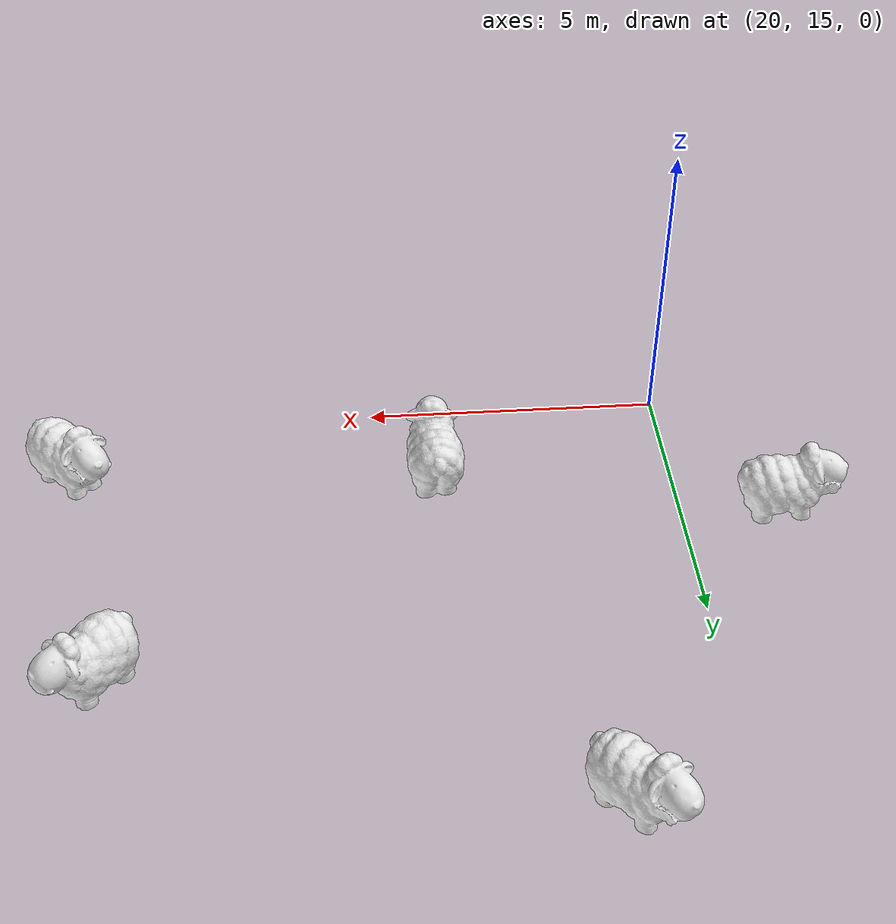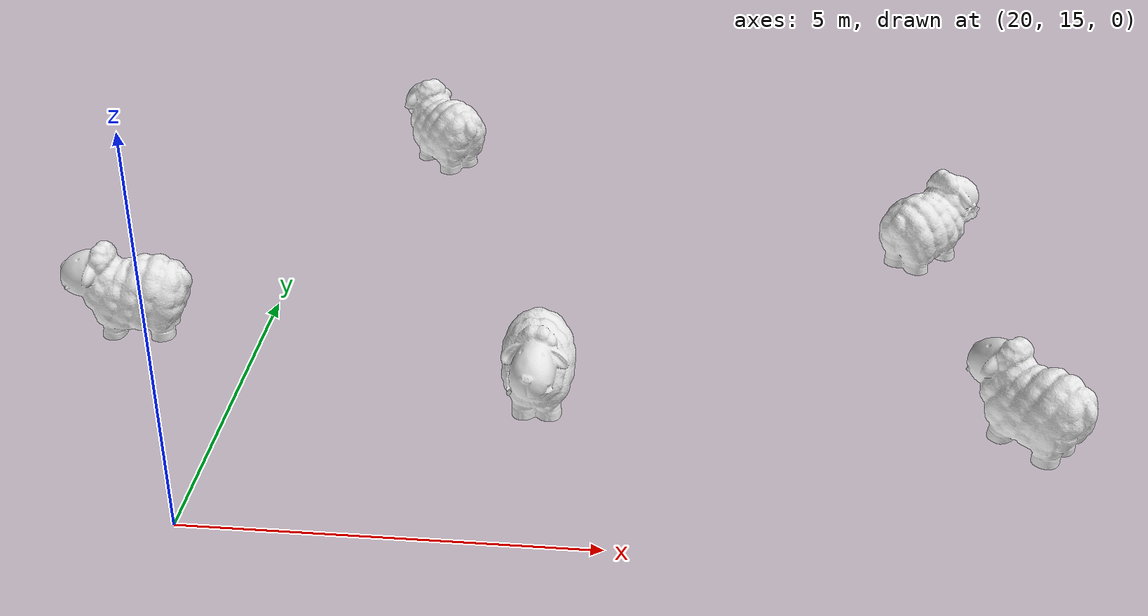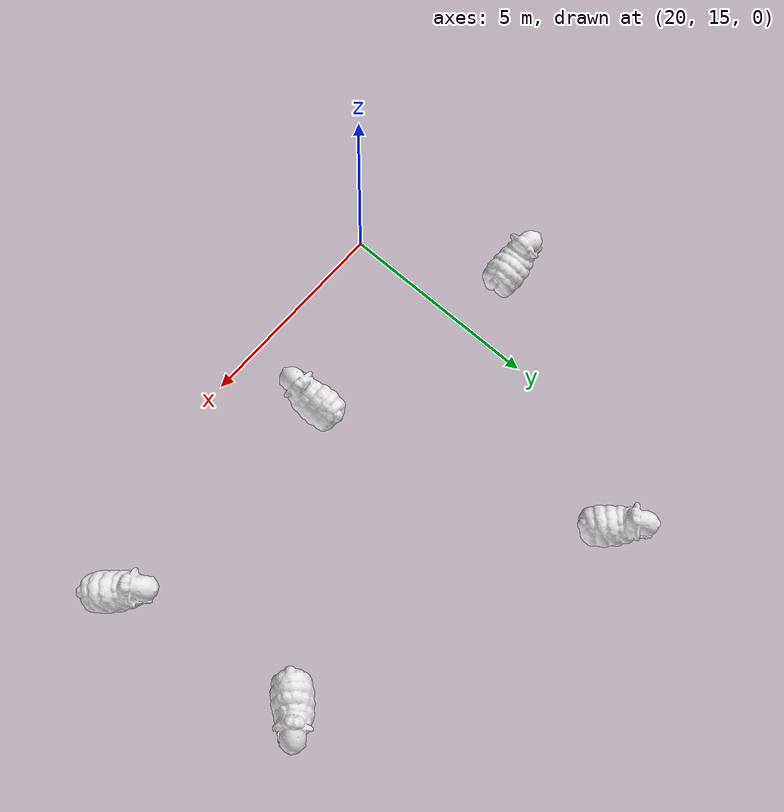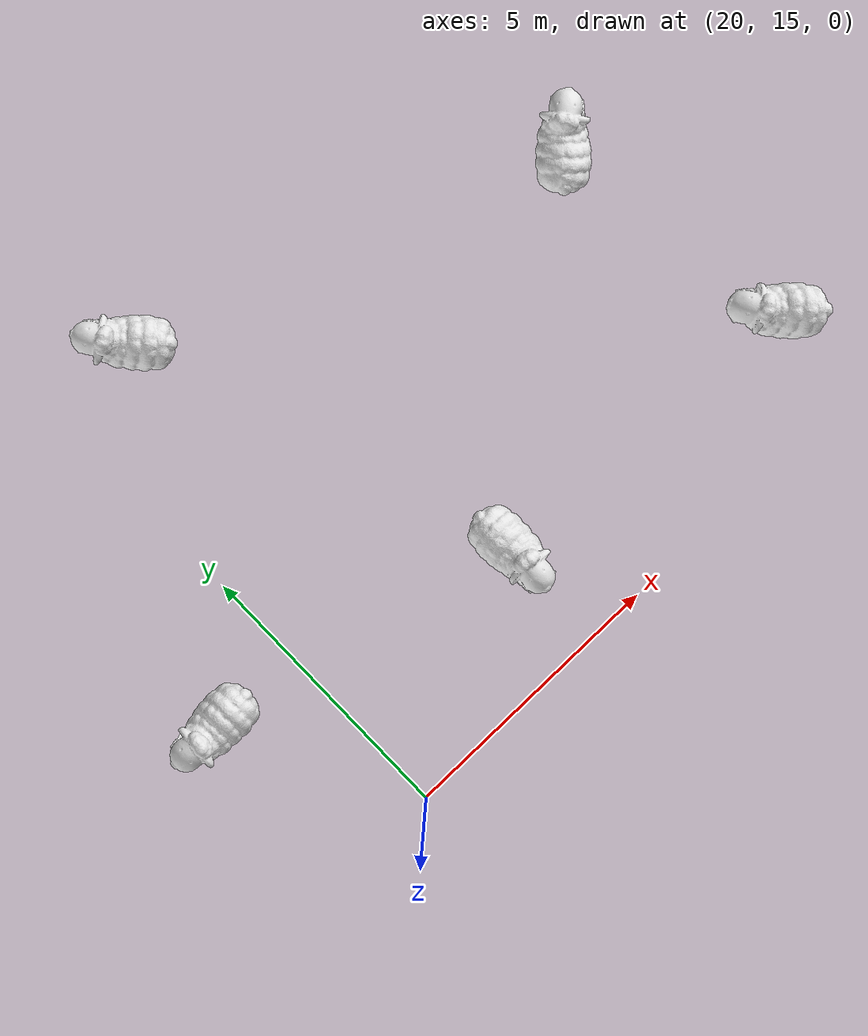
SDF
<sdf version="1.7">
 <world name="default">
  <light name="sun" type="directional">
   <pose>0 0 10 0 -0 0</pose>
   <diffuse>1 1 1 1</diffuse>
   <specular>0.2 0.2 0.2 1</specular>
   <attenuation>
    <range>1000</range>
    <constant>0.9</constant>
    <linear>0.01</linear>
    <quadratic>0.001</quadratic>
   </attenuation>
   <direction>-0.5 -0.5 -1</direction>
   <spot><inner_angle>0</inner_angle><outer_angle>0</outer_angle><falloff>0</falloff></spot>
  </light>
  <physics name="default_physics" default="0" type="ode">
   <max_step_size>0.001</max_step_size>
   <real_time_factor>1</real_time_factor>
   <real_time_update_rate>1000</real_time_update_rate>
  </physics>
  <scene><ambient>1 1 1 1</ambient><background>1 1 1 1</background><shadows>1</shadows></scene>
  <spherical_coordinates>
   <surface_model>EARTH_WGS84</surface_model>
   <world_frame_orientation>NED</world_frame_orientation>
   <latitude_deg>-35.3633</latitude_deg>
   <longitude_deg>149.165</longitude_deg>
   <elevation>0</elevation>
   <heading_deg>0</heading_deg>
  </spherical_coordinates>
  <gravity>0 0 -9.8</gravity>
  <magnetic_field>6e-06 2.3e-05 -4.2e-05</magnetic_field>
  <atmosphere type="adiabatic"/>
  <audio><device>default</device></audio>
  <model name="sheep_1">
   <pose>24.0462 17.1149 0.5 0 -0 2.08361</pose>
   <static>1</static>
   <link name="link">
    <inertial>
     <mass>1</mass>
     <inertia><ixx>0.083</ixx><ixy>0</ixy><ixz>0</ixz><iyy>0.083</iyy><iyz>0</iyz><izz>0.083</izz></inertia>
    </inertial>
    <collision name="collision"><geometry><box><size>1 1 1</size></box></geometry></collision>
    <visual name="base_link_visual">
     <geometry><mesh><scale>0.02 0.02 0.02</scale><uri>model://sheep_1/meshes/sheep_1.stl</uri></mesh></geometry>
     <material>
      <script><name>Gazebo/White</name><uri>file://media/materials/scripts/gazebo.material</uri></script>
     </material>
    </visual>
   </link>
  </model>
  <model name="sheep_1_0">
   <pose>18.4675 18.3776 0.5 0 -0 0.522351</pose>
   <static>1</static>
   <link name="link">
    <inertial>
     <mass>1</mass>
     <inertia><ixx>0.083</ixx><ixy>0</ixy><ixz>0</ixz><iyy>0.083</iyy><iyz>0</iyz><izz>0.083</izz></inertia>
    </inertial>
    <collision name="collision"><geometry><box><size>1 1 1</size></box></geometry></collision>
    <visual name="base_link_visual">
     <geometry><mesh><scale>0.02 0.02 0.02</scale><uri>model://sheep_1/meshes/sheep_1.stl</uri></mesh></geometry>
     <material>
      <script><name>Gazebo/White</name><uri>file://media/materials/scripts/gazebo.material</uri></script>
     </material>
    </visual>
   </link>
  </model>
  <model name="sheep_1_1">
   <pose>21.8008 23.9642 0.5 0 0 -0.33656</pose>
   <static>1</static>
   <link name="link">
    <inertial>
     <mass>1</mass>
     <inertia><ixx>0.083</ixx><ixy>0</ixy><ixz>0</ixz><iyy>0.083</iyy><iyz>0</iyz><izz>0.083</izz></inertia>
    </inertial>
    <collision name="collision"><geometry><box><size>1 1 1</size></box></geometry></collision>
    <visual name="base_link_visual">
     <geometry><mesh><scale>0.02 0.02 0.02</scale><uri>model://sheep_1/meshes/sheep_1.stl</uri></mesh></geometry>
     <material>
      <script><name>Gazebo/White</name><uri>file://media/materials/scripts/gazebo.material</uri></script>
     </material>
    </visual>
   </link>
  </model>
  <model name="sheep_1_2">
   <pose>29.2394 21.3489 0.5 0 0 -1.86154</pose>
   <static>1</static>
   <link name="link">
    <inertial>
     <mass>1</mass>
     <inertia><ixx>0.083</ixx><ixy>0</ixy><ixz>0</ixz><iyy>0.083</iyy><iyz>0</iyz><izz>0.083</izz></inertia>
    </inertial>
    <collision name="collision"><geometry><box><size>1 1 1</size></box></geometry></collision>
    <visual name="base_link_visual">
     <geometry><mesh><scale>0.02 0.02 0.02</scale><uri>model://sheep_1/meshes/sheep_1.stl</uri></mesh></geometry>
     <material>
      <script><name>Gazebo/White</name><uri>file://media/materials/scripts/gazebo.material</uri></script>
     </material>
    </visual>
   </link>
  </model>
  <model name="sheep_1_3">
   <pose>29.8952 16.9161 0.495272 0 0 -0.301722</pose>
   <static>1</static>
   <link name="link">
    <inertial>
     <mass>1</mass>
     <inertia><ixx>0.083</ixx><ixy>0</ixy><ixz>0</ixz><iyy>0.083</iyy><iyz>0</iyz><izz>0.083</izz></inertia>
    </inertial>
    <collision name="collision"><geometry><box><size>1 1 1</size></box></geometry></collision>
    <visual name="base_link_visual">
     <geometry><mesh><scale>0.02 0.02 0.02</scale><uri>model://sheep_1/meshes/sheep_1.stl</uri></mesh></geometry>
     <material>
      <script><name>Gazebo/White</name><uri>file://media/materials/scripts/gazebo.material</uri></script>
     </material>
    </visual>
   </link>
  </model>
 </world>
</sdf>
